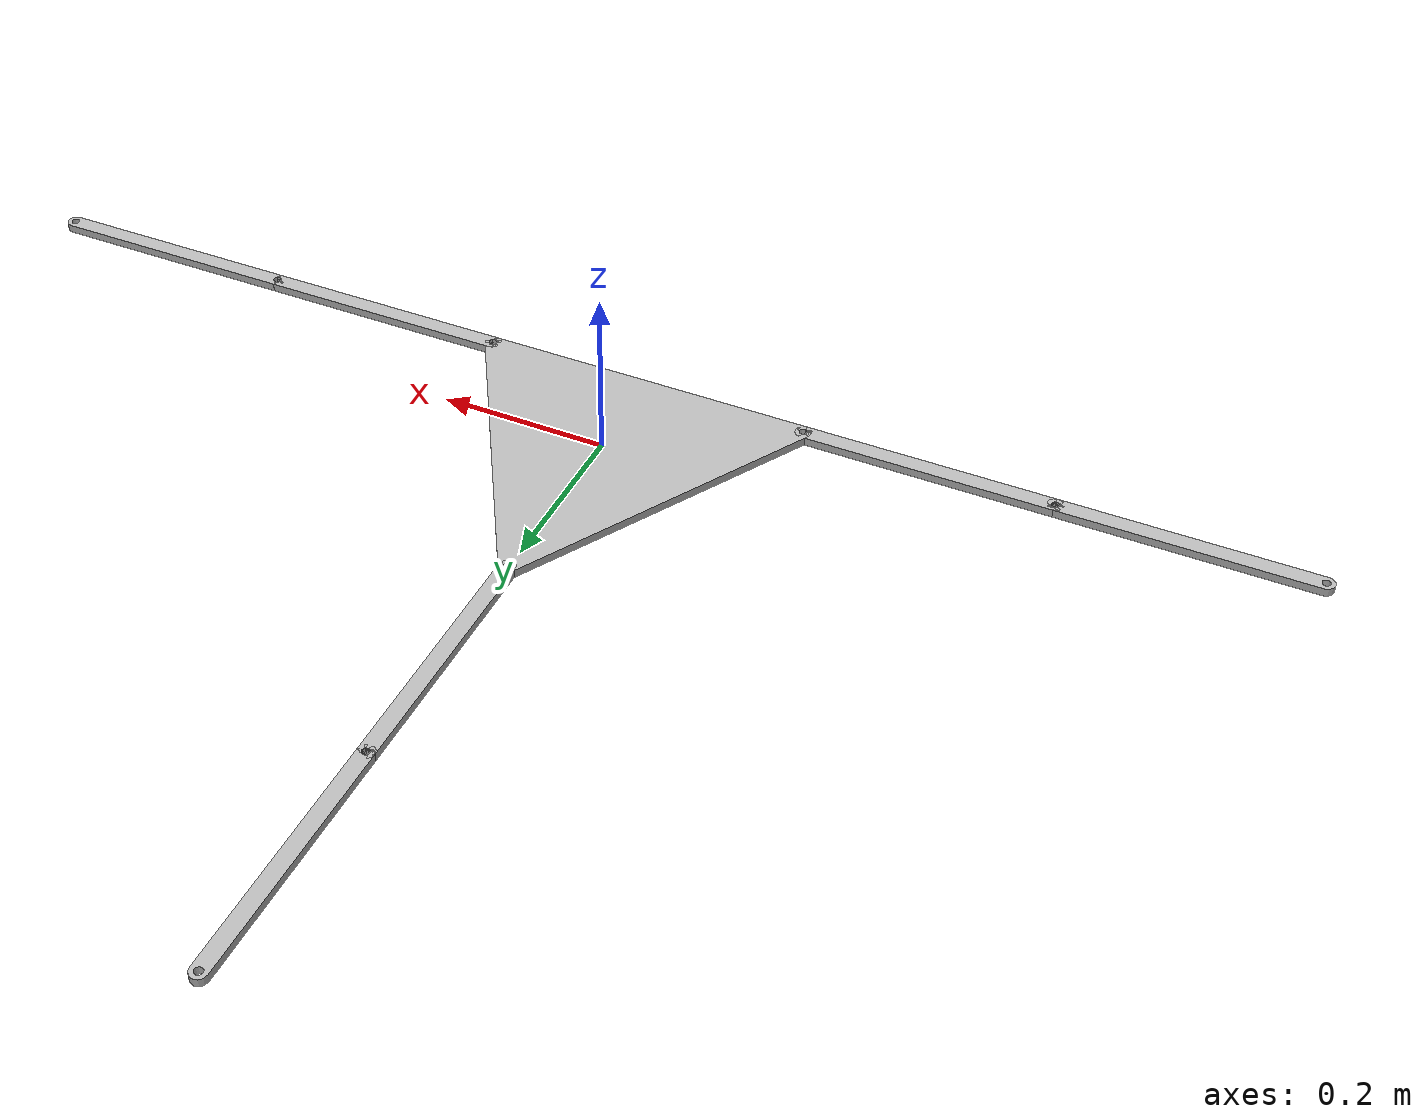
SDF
<sdf version='1.6'>
  <model name='parallel_3rrr'>
    <link name='base_link'>
      <pose>0 0 0 0 0 0</pose>
      <inertial>
        <pose>0 0 -0 0 -0 0</pose>
        <mass>0.81361</mass>
        <inertia>
          <ixx>0.0063219</ixx>
          <ixy>-2.5166e-18</ixy>
          <ixz>1.0902e-18</ixz>
          <iyy>0.0063219</iyy>
          <iyz>-2.8025e-18</iyz>
          <izz>0.01263</izz>
        </inertia>
      </inertial>
      <collision name='base_link_collision'>
        <pose>0 0 0 0 -0 0</pose>
        <geometry>
          <mesh>
            <scale>1 1 1</scale>
            <uri>/home/jsitler/catkin_workspace/uuv_ws/src/uvms-perching/src/parallel_3rrr/meshes/base_link.STL</uri>
          </mesh>
        </geometry>
      </collision>
      <visual name='base_link_visual'>
        <pose>0 0 0 0 -0 0</pose>
        <geometry>
          <mesh>
            <scale>1 1 1</scale>
            <uri>/home/jsitler/catkin_workspace/uuv_ws/src/uvms-perching/src/parallel_3rrr/meshes/base_link.STL</uri>
          </mesh>
        </geometry>
      </visual>
    </link>
    <link name='link11'>
      <pose>0.2 -0.115470053837925 0 0 0 0</pose>
      <inertial>
        <pose>0.15 0 0 0 -0 0</pose>
        <mass>0.061571</mass>
        <inertia>
          <ixx>2.5818e-06</ixx>
          <ixy>-7.6021e-20</ixy>
          <ixz>1.0602e-21</ixz>
          <iyy>0.00048992</iyy>
          <iyz>-9.0446e-22</iyz>
          <izz>0.00049148</izz>
        </inertia>
      </inertial>
      <collision name='link11_collision'>
        <pose>0 0 0 0 0 0</pose>
        <geometry>
          <mesh>
            <scale>1 1 1</scale>
            <uri>/home/jsitler/catkin_workspace/uuv_ws/src/uvms-perching/src/parallel_3rrr/meshes/link11.STL</uri>
          </mesh>
        </geometry>
      </collision>
      <visual name='link11_visual'>
        <pose>0 0 0 0 0 0</pose>
        <geometry>
          <mesh>
            <scale>1 1 1</scale>
            <uri>/home/jsitler/catkin_workspace/uuv_ws/src/uvms-perching/src/parallel_3rrr/meshes/link11.STL</uri>
          </mesh>
        </geometry>
      </visual>
    </link>
    <joint name='joint11' type='revolute'>
      <child>link11</child>
      <parent>base_link</parent>
      <axis>
        <xyz>0 0 1</xyz>
        <limit>
          <lower>-1e+16</lower>
          <upper>1e+16</upper>
        </limit>
        <dynamics>
          <damping>0.05</damping>
          <friction>0</friction>
          <spring_reference>0</spring_reference>
          <spring_stiffness>0</spring_stiffness>
        </dynamics>
      </axis>
    </joint>
    <link name='link12'>
      <pose>0.5 -0.115470053837925 0 0 0 0</pose>
      <inertial>
        <pose>0.15 -0 0 0 -0 0</pose>
        <mass>0.061571</mass>
        <inertia>
          <ixx>2.5818e-06</ixx>
          <ixy>-1.5141e-20</ixy>
          <ixz>-3.2527e-21</ixz>
          <iyy>0.00048992</iyy>
          <iyz>-1.5123e-21</iyz>
          <izz>0.00049148</izz>
        </inertia>
      </inertial>
      <collision name='link12_collision'>
        <pose>0 0 0 0 -0 0</pose>
        <geometry>
          <mesh>
            <scale>1 1 1</scale>
            <uri>/home/jsitler/catkin_workspace/uuv_ws/src/uvms-perching/src/parallel_3rrr/meshes/link12.STL</uri>
          </mesh>
        </geometry>
      </collision>
      <visual name='link12_visual'>
        <pose>0 0 0 0 -0 0</pose>
        <geometry>
          <mesh>
            <scale>1 1 1</scale>
            <uri>/home/jsitler/catkin_workspace/uuv_ws/src/uvms-perching/src/parallel_3rrr/meshes/link12.STL</uri>
          </mesh>
        </geometry>
      </visual>
    </link>
    <joint name='joint12' type='revolute'>
      <child>link12</child>
      <parent>link11</parent>
      <axis>
        <xyz>0 0 -1</xyz>
        <limit>
          <lower>-1e+16</lower>
          <upper>1e+16</upper>
        </limit>
        <dynamics>
          <damping>0.05</damping>
          <friction>0</friction>
          <spring_reference>0</spring_reference>
          <spring_stiffness>0</spring_stiffness>
        </dynamics>
      </axis>
    </joint>
    <link name='link21'>
      <pose>0 0.230940107675850 0 0 0 1.570796326794897</pose>
      <inertial>
        <pose>0.15 -0 -0 0 -0 0</pose>
        <mass>0.061571</mass>
        <inertia>
          <ixx>2.5818e-06</ixx>
          <ixy>-7.5704e-21</ixy>
          <ixz>-1.9583e-21</ixz>
          <iyy>0.00048992</iyy>
          <iyz>1.9024e-22</iyz>
          <izz>0.00049148</izz>
        </inertia>
      </inertial>
      <collision name='link21_collision'>
        <pose>0 0 0 0 -0 0</pose>
        <geometry>
          <mesh>
            <scale>1 1 1</scale>
            <uri>/home/jsitler/catkin_workspace/uuv_ws/src/uvms-perching/src/parallel_3rrr/meshes/link21.STL</uri>
          </mesh>
        </geometry>
      </collision>
      <visual name='link21_visual'>
        <pose>0 0 0 0 -0 0</pose>
        <geometry>
          <mesh>
            <scale>1 1 1</scale>
            <uri>/home/jsitler/catkin_workspace/uuv_ws/src/uvms-perching/src/parallel_3rrr/meshes/link21.STL</uri>
          </mesh>
        </geometry>
      </visual>
    </link>
    <joint name='joint21' type='revolute'>
      <child>link21</child>
      <parent>base_link</parent>
      <axis>
        <xyz>0 0 1</xyz>
        <limit>
          <lower>-1e+16</lower>
          <upper>1e+16</upper>
        </limit>
        <dynamics>
          <damping>0.05</damping>
          <friction>0</friction>
          <spring_reference>0</spring_reference>
          <spring_stiffness>0</spring_stiffness>
        </dynamics>
      </axis>
    </joint>
    <link name='link22'>
      <pose>0 0.530940107675850 0 0 0 1.570796326794897</pose>
      <inertial>
        <pose>0.15 0 0 0 0 0</pose>
        <mass>0.061571</mass>
        <inertia>
          <ixx>2.5818e-06</ixx>
          <ixy>-1.9641e-20</ixy>
          <ixz>-2.3829e-21</ixz>
          <iyy>0.00048992</iyy>
          <iyz>-4.7096e-23</iyz>
          <izz>0.00049148</izz>
        </inertia>
      </inertial>
      <collision name='link22_collision'>
        <pose>0 0 0 0 -0 0</pose>
        <geometry>
          <mesh>
            <scale>1 1 1</scale>
            <uri>/home/jsitler/catkin_workspace/uuv_ws/src/uvms-perching/src/parallel_3rrr/meshes/link22.STL</uri>
          </mesh>
        </geometry>
      </collision>
      <visual name='link22_visual'>
        <pose>0 0 0 0 -0 0</pose>
        <geometry>
          <mesh>
            <scale>1 1 1</scale>
            <uri>/home/jsitler/catkin_workspace/uuv_ws/src/uvms-perching/src/parallel_3rrr/meshes/link22.STL</uri>
          </mesh>
        </geometry>
      </visual>
    </link>
    <joint name='joint22' type='revolute'>
      <child>link22</child>
      <parent>link21</parent>
      <axis>
        <xyz>0 0 1</xyz>
        <limit>
          <lower>-1e+16</lower>
          <upper>1e+16</upper>
        </limit>
        <dynamics>
          <damping>0.05</damping>
          <friction>0</friction>
          <spring_reference>0</spring_reference>
          <spring_stiffness>0</spring_stiffness>
        </dynamics>
      </axis>
    </joint>
    <link name='link31'>
      <pose>-0.2 -0.115470053837925 0 0 0 3.141592653589793</pose>
      <inertial>
        <pose>0.15 -0 0 0 -0 0</pose>
        <mass>0.061571</mass>
        <inertia>
          <ixx>2.5818e-06</ixx>
          <ixy>-2.7582e-20</ixy>
          <ixz>1.6934e-23</ixz>
          <iyy>0.00048992</iyy>
          <iyz>8.022e-22</iyz>
          <izz>0.00049148</izz>
        </inertia>
      </inertial>
      <collision name='link31_collision'>
        <pose>0 0 0 0 -0 0</pose>
        <geometry>
          <mesh>
            <scale>1 1 1</scale>
            <uri>/home/jsitler/catkin_workspace/uuv_ws/src/uvms-perching/src/parallel_3rrr/meshes/link31.STL</uri>
          </mesh>
        </geometry>
      </collision>
      <visual name='link31_visual'>
        <pose>0 0 0 0 0 0</pose>
        <geometry>
          <mesh>
            <scale>1 1 1</scale>
            <uri>/home/jsitler/catkin_workspace/uuv_ws/src/uvms-perching/src/parallel_3rrr/meshes/link31.STL</uri>
          </mesh>
        </geometry>
      </visual>
    </link>
    <joint name='joint31' type='revolute'>
      <child>link31</child>
      <parent>base_link</parent>
      <axis>
        <xyz>0 0 1</xyz>
        <limit>
          <lower>-1e+16</lower>
          <upper>1e+16</upper>
        </limit>
        <dynamics>
          <damping>0.05</damping>
          <friction>0</friction>
          <spring_reference>0</spring_reference>
          <spring_stiffness>0</spring_stiffness>
        </dynamics>
      </axis>
    </joint>
    <link name='link32'>
      <pose>-0.5 -0.115470053837925 0 0 0 3.141592653589793</pose>
      <inertial>
        <pose>0.15 0 0 0 0 0</pose>
        <mass>0.061571</mass>
        <inertia>
          <ixx>2.5818e-06</ixx>
          <ixy>3.6475e-20</ixy>
          <ixz>-1.5085e-21</ixz>
          <iyy>0.00048992</iyy>
          <iyz>-3.1167e-22</iyz>
          <izz>0.00049148</izz>
        </inertia>
      </inertial>
      <collision name='link32_collision'>
        <pose>0 0 0 0 -0 0</pose>
        <geometry>
          <mesh>
            <scale>1 1 1</scale>
            <uri>/home/jsitler/catkin_workspace/uuv_ws/src/uvms-perching/src/parallel_3rrr/meshes/link32.STL</uri>
          </mesh>
        </geometry>
      </collision>
      <visual name='link32_visual'>
        <pose>0 0 0 0 -0 0</pose>
        <geometry>
          <mesh>
            <scale>1 1 1</scale>
            <uri>/home/jsitler/catkin_workspace/uuv_ws/src/uvms-perching/src/parallel_3rrr/meshes/link32.STL</uri>
          </mesh>
        </geometry>
      </visual>
    </link>
    <joint name='joint32' type='revolute'>
      <child>link32</child>
      <parent>link31</parent>
      <axis>
        <xyz>0 0 1</xyz>
        <limit>
          <lower>-1e+16</lower>
          <upper>1e+16</upper>
        </limit>
        <dynamics>
          <damping>0.05</damping>
          <friction>0</friction>
          <spring_reference>0</spring_reference>
          <spring_stiffness>0</spring_stiffness>
        </dynamics>
      </axis>
    </joint>
    <joint name='arm1base' type='revolute'>
      <child>link12</child>
      <parent>world</parent>
      <pose> 0.3 0 0 0 0 0</pose>
      <axis>
        <xyz>0 0 1</xyz>
        <limit>
          <lower>-1e+16</lower>
          <upper>1e+16</upper>
        </limit>
        <dynamics>
          <damping>0.05</damping>
          <friction>0</friction>
          <spring_reference>0</spring_reference>
          <spring_stiffness>10</spring_stiffness>
        </dynamics>
      </axis>
    </joint>
    <joint name='arm2base' type='revolute'>
      <child>link22</child>
      <parent>world</parent>
      <pose> 0.3 0 0 0 0 0</pose>
      <axis>
        <xyz>0 0 1</xyz>
        <limit>
          <lower>-1e+16</lower>
          <upper>1e+16</upper>
        </limit>
        <dynamics>
          <damping>0.05</damping>
          <friction>0</friction>
          <spring_reference>0</spring_reference>
          <spring_stiffness>10</spring_stiffness>
        </dynamics>
      </axis>
    </joint>
    <joint name='arm3base' type='revolute'>
      <child>link32</child>
      <parent>world</parent>
      <pose> 0.3 0 0 0 0 0</pose>
      <axis>
        <xyz>0 0 1</xyz>
        <limit>
          <lower>-1e+16</lower>
          <upper>1e+16</upper>
        </limit>
        <dynamics>
          <damping>0.05</damping>
          <friction>0</friction>
          <spring_reference>0</spring_reference>
          <spring_stiffness>10</spring_stiffness>
        </dynamics>
      </axis>
    </joint>
  </model>
</sdf>
